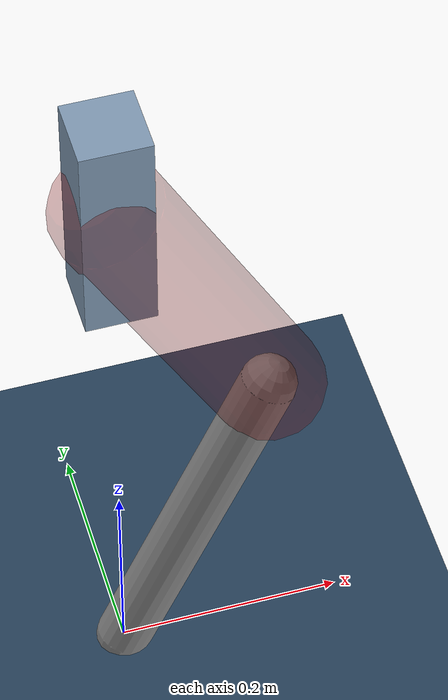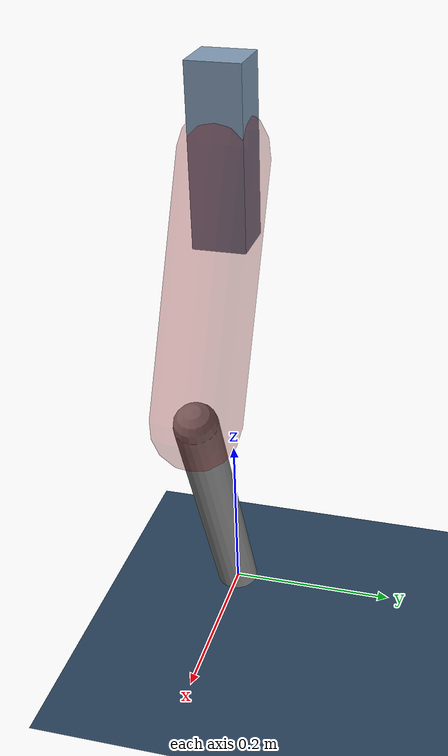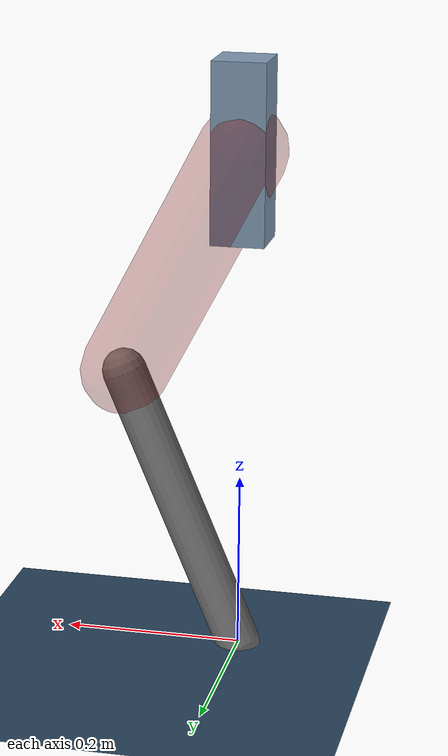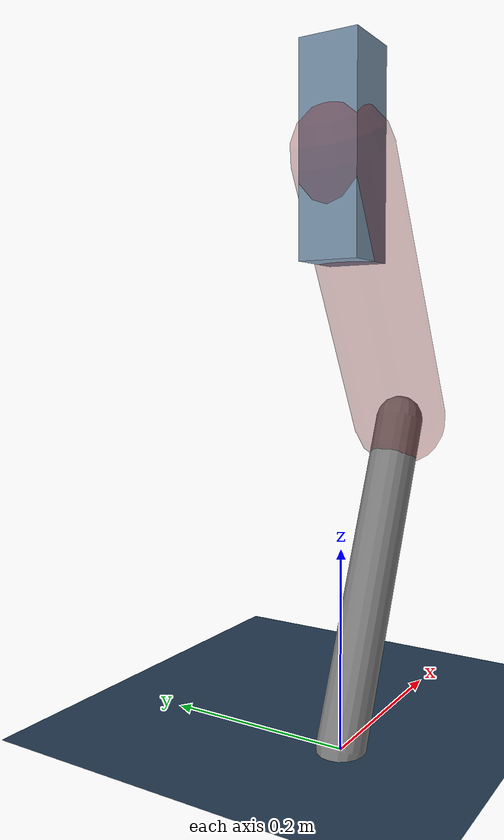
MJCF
<mujoco model="Hopper2D">
	<compiler inertiafromgeom="true" angle="radian" />
	<option timestep="0.001" integrator="implicit" cone="elliptic" solver="Newton" tolerance="1e-10" />

	<default>
		<geom contype="1" conaffinity="1" condim="3" friction="2 0.005 0.0001" solref="0.005 1" />
		<joint limited="true" damping="0.1" />
	</default>

	<asset>
		<texture name="skybox" type="skybox" builtin="gradient" rgb1=".4 .6 .8" rgb2="0 0 0" width="800" height="800" />
		<texture name="grid" type="2d" builtin="checker" rgb1=".1 .2 .3" rgb2=".2 .3 .4" width="300" height="300" mark="edge" markrgb=".2 .3 .4" />
		<material name="ground" texture="grid" texrepeat="1 1" texuniform="true" reflectance="0.1" />
		<material name="leg" rgba="0.5 0.6 0.7 1" />
	</asset>

	<worldbody>

		<geom name="floor" type="plane" size="5 5 0.25" material="ground" />

		<light directional="false" diffuse="0.8 0.8 0.8" specular="0.3 0.3 0.3" pos="0 0 2" dir="0 0 -1" />
		<light mode="targetbodycom" target="base" directional="false" diffuse="0.8 0.8 0.8" specular="0.3 0.3 0.3" pos="0 0 2" dir="0 0 -1" />

		<camera name="fixed" pos="0 -2 1" xyaxes="1 0 0 0 0 1" />
		<camera name="tracking" mode="trackcom" pos="0 -3 1" />

		<body name="root" pos="0 0 0.5739875470332683">
			<joint name="slide_x" type="slide" axis="1 0 0" range="-100 100" />
			<joint name="slide_z" type="slide" axis="0 0 1" range="0 10" />

			<body name="base" pos="0 0 0">
				<geom name="torso" type="box" size="0.03 0.03 0.1" mass="1.8719999999999999" material="leg" />

				<body name="link1" pos="0 0 0" euler="0 1.0912164458049227 0">
					<joint type="hinge" axis="0 -1 0" pos="0 0 0" name="hinge1" limited="true" range="-3.14 3.14" stiffness="0" damping="0.1" />
					<geom name="thigh" type="capsule" fromto="0 0 0 0.28934054606960746 0 0" size="0.05" rgba="0.5 0 0 0.3" mass="0.9600194743879402" />

					<body name="link2" pos="0.28934054606960746 0 0" euler="0 0.8778579503470317 0">
						<joint type="hinge" axis="0 -1 0" pos="0 0 0" name="hinge2" limited="true" range="-3.14 3.14" stiffness="0" damping="0.1" />
						<geom name="shank" type="capsule" fromto="0 0 0 0.3442307181627429 0 0" size="0.025" mass="0.5192845745301944" />

					</body>
				</body>
			</body>
		</body>
	</worldbody>

	<actuator>
		<motor name="torque1" joint="hinge1" ctrlrange="-12.325429341347391 12.325429341347391" ctrllimited="true" gear="1" />
		<motor name="torque2" joint="hinge2" ctrlrange="-52.72673218893849 52.72673218893849" ctrllimited="true" gear="1" />
	</actuator>
</mujoco>
